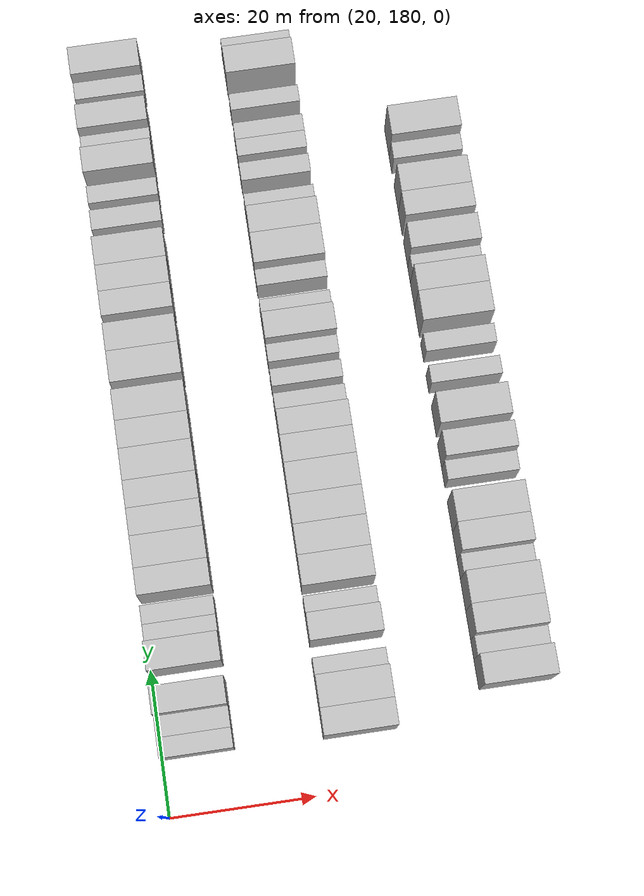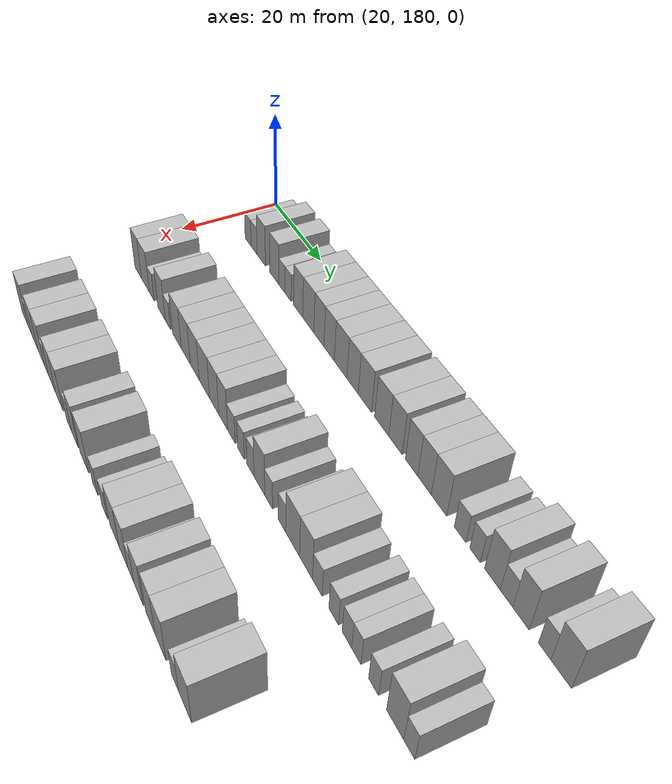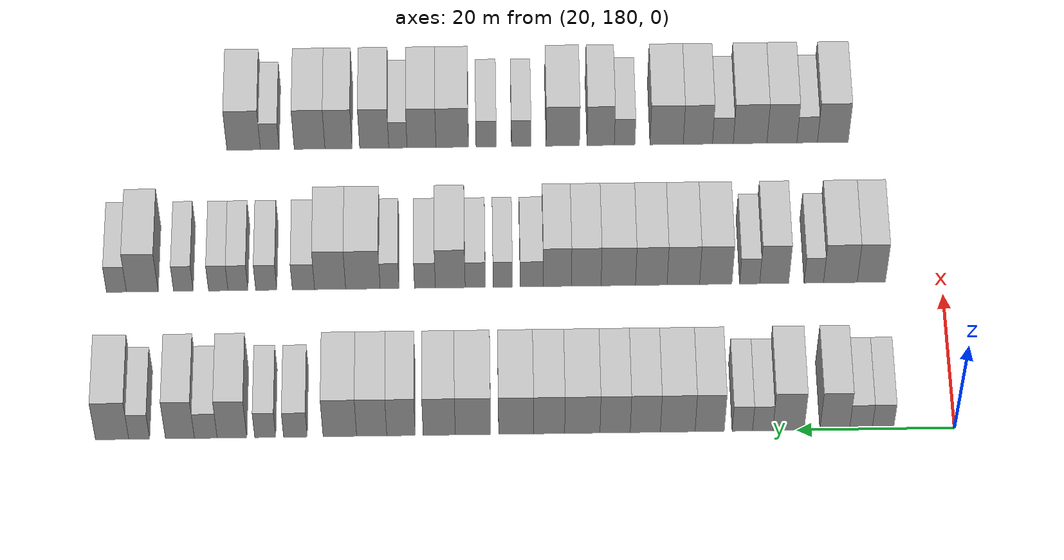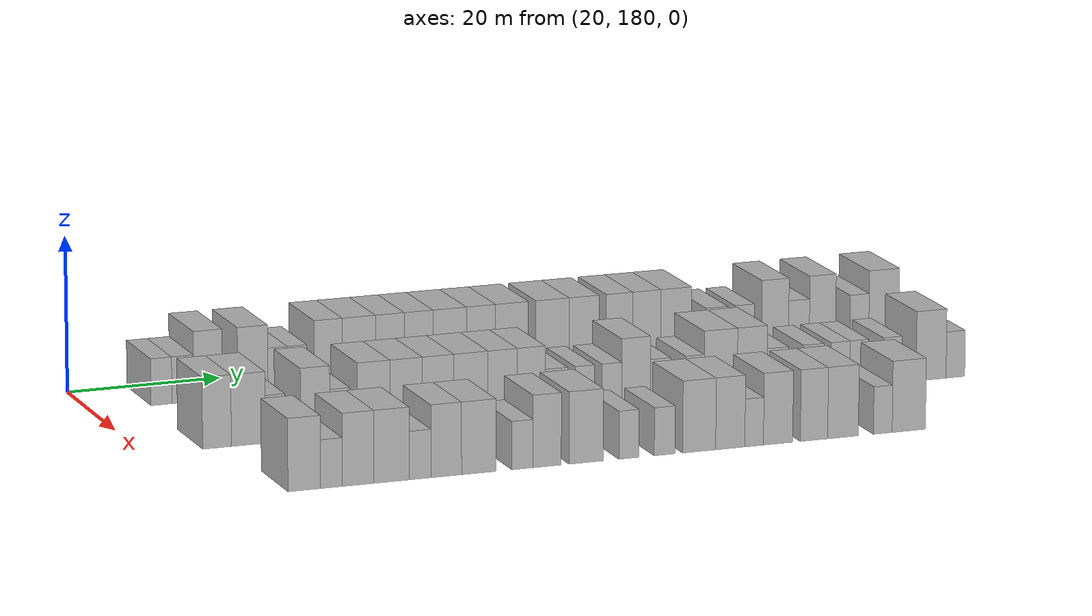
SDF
<sdf version="1.6">
 <world name="default">
  <model name="building_142">
   <static>1</static>
   <pose>25.0000 189.1186 0 0.000000 0.000000 0.000000</pose>
   <link name="link">
    <pose>0 0 3.00 0 0 0</pose>
    <collision name="collision"><geometry><box><size>10.0000 2.7301 6.0000</size></box></geometry></collision>
    <visual name="visual">
     <cast_shadows>0</cast_shadows>
     <geometry><box><size>10.0000 2.7301 6.0000</size></box></geometry>
     <material>
      <script>
       <uri>model://HANNAS_wall/materials/scripts</uri>
       <uri>model://HANNAS_wall/materials/textures</uri>
       <name>vrc/HANNAS_wall</name>
      </script>
     </material>
    </visual>
   </link>
  </model>
  <model name="building_143">
   <static>1</static>
   <pose>25.0000 191.9158 0 0.000000 0.000000 0.000000</pose>
   <link name="link">
    <pose>0 0 3.00 0 0 0</pose>
    <collision name="collision"><geometry><box><size>10.0000 2.8645 6.0000</size></box></geometry></collision>
    <visual name="visual">
     <cast_shadows>0</cast_shadows>
     <geometry><box><size>10.0000 2.8645 6.0000</size></box></geometry>
     <material>
      <script>
       <uri>model://HANNAS_wall/materials/scripts</uri>
       <uri>model://HANNAS_wall/materials/textures</uri>
       <name>vrc/HANNAS_wall</name>
      </script>
     </material>
    </visual>
   </link>
  </model>
  <model name="building_144">
   <static>1</static>
   <pose>25.0000 195.2219 0 0.000000 0.000000 0.000000</pose>
   <link name="link">
    <pose>0 0 4.50 0 0 0</pose>
    <collision name="collision"><geometry><box><size>10.0000 3.7477 9.0000</size></box></geometry></collision>
    <visual name="visual">
     <cast_shadows>0</cast_shadows>
     <geometry><box><size>10.0000 3.7477 9.0000</size></box></geometry>
     <material>
      <script>
       <uri>model://HANNAS_wall/materials/scripts</uri>
       <uri>model://HANNAS_wall/materials/textures</uri>
       <name>vrc/HANNAS_wall</name>
      </script>
     </material>
    </visual>
   </link>
  </model>
  <model name="building_145">
   <static>1</static>
   <pose>25.0000 201.0868 0 0.000000 0.000000 0.000000</pose>
   <link name="link">
    <pose>0 0 4.50 0 0 0</pose>
    <collision name="collision"><geometry><box><size>10.0000 3.9820 9.0000</size></box></geometry></collision>
    <visual name="visual">
     <cast_shadows>0</cast_shadows>
     <geometry><box><size>10.0000 3.9820 9.0000</size></box></geometry>
     <material>
      <script>
       <uri>model://HANNAS_wall/materials/scripts</uri>
       <uri>model://HANNAS_wall/materials/textures</uri>
       <name>vrc/HANNAS_wall</name>
      </script>
     </material>
    </visual>
   </link>
  </model>
  <model name="building_146">
   <static>1</static>
   <pose>25.0000 204.3620 0 0.000000 0.000000 0.000000</pose>
   <link name="link">
    <pose>0 0 3.00 0 0 0</pose>
    <collision name="collision"><geometry><box><size>10.0000 2.5684 6.0000</size></box></geometry></collision>
    <visual name="visual">
     <cast_shadows>0</cast_shadows>
     <geometry><box><size>10.0000 2.5684 6.0000</size></box></geometry>
     <material>
      <script>
       <uri>model://HANNAS_wall/materials/scripts</uri>
       <uri>model://HANNAS_wall/materials/textures</uri>
       <name>vrc/HANNAS_wall</name>
      </script>
     </material>
    </visual>
   </link>
  </model>
  <model name="building_147">
   <static>1</static>
   <pose>25.0000 206.9360 0 0.000000 0.000000 0.000000</pose>
   <link name="link">
    <pose>0 0 3.00 0 0 0</pose>
    <collision name="collision"><geometry><box><size>10.0000 2.5796 6.0000</size></box></geometry></collision>
    <visual name="visual">
     <cast_shadows>0</cast_shadows>
     <geometry><box><size>10.0000 2.5796 6.0000</size></box></geometry>
     <material>
      <script>
       <uri>model://HANNAS_wall/materials/scripts</uri>
       <uri>model://HANNAS_wall/materials/textures</uri>
       <name>vrc/HANNAS_wall</name>
      </script>
     </material>
    </visual>
   </link>
  </model>
  <model name="building_148">
   <static>1</static>
   <pose>25.0000 211.0804 0 0.000000 0.000000 0.000000</pose>
   <link name="link">
    <pose>0 0 4.50 0 0 0</pose>
    <collision name="collision"><geometry><box><size>10.0000 3.7092 9.0000</size></box></geometry></collision>
    <visual name="visual">
     <cast_shadows>0</cast_shadows>
     <geometry><box><size>10.0000 3.7092 9.0000</size></box></geometry>
     <material>
      <script>
       <uri>model://HANNAS_wall/materials/scripts</uri>
       <uri>model://HANNAS_wall/materials/textures</uri>
       <name>vrc/HANNAS_wall</name>
      </script>
     </material>
    </visual>
   </link>
  </model>
  <model name="building_149">
   <static>1</static>
   <pose>25.0000 215.1332 0 0.000000 0.000000 0.000000</pose>
   <link name="link">
    <pose>0 0 4.50 0 0 0</pose>
    <collision name="collision"><geometry><box><size>10.0000 4.3963 9.0000</size></box></geometry></collision>
    <visual name="visual">
     <cast_shadows>0</cast_shadows>
     <geometry><box><size>10.0000 4.3963 9.0000</size></box></geometry>
     <material>
      <script>
       <uri>model://HANNAS_wall/materials/scripts</uri>
       <uri>model://HANNAS_wall/materials/textures</uri>
       <name>vrc/HANNAS_wall</name>
      </script>
     </material>
    </visual>
   </link>
  </model>
  <model name="building_150">
   <static>1</static>
   <pose>25.0000 219.2403 0 0.000000 0.000000 0.000000</pose>
   <link name="link">
    <pose>0 0 4.50 0 0 0</pose>
    <collision name="collision"><geometry><box><size>10.0000 3.8178 9.0000</size></box></geometry></collision>
    <visual name="visual">
     <cast_shadows>0</cast_shadows>
     <geometry><box><size>10.0000 3.8178 9.0000</size></box></geometry>
     <material>
      <script>
       <uri>model://HANNAS_wall/materials/scripts</uri>
       <uri>model://HANNAS_wall/materials/textures</uri>
       <name>vrc/HANNAS_wall</name>
      </script>
     </material>
    </visual>
   </link>
  </model>
  <model name="building_151">
   <static>1</static>
   <pose>25.0000 223.0662 0 0.000000 0.000000 0.000000</pose>
   <link name="link">
    <pose>0 0 4.50 0 0 0</pose>
    <collision name="collision"><geometry><box><size>10.0000 3.8341 9.0000</size></box></geometry></collision>
    <visual name="visual">
     <cast_shadows>0</cast_shadows>
     <geometry><box><size>10.0000 3.8341 9.0000</size></box></geometry>
     <material>
      <script>
       <uri>model://HANNAS_wall/materials/scripts</uri>
       <uri>model://HANNAS_wall/materials/textures</uri>
       <name>vrc/HANNAS_wall</name>
      </script>
     </material>
    </visual>
   </link>
  </model>
  <model name="building_152">
   <static>1</static>
   <pose>25.0000 227.2191 0 0.000000 0.000000 0.000000</pose>
   <link name="link">
    <pose>0 0 4.50 0 0 0</pose>
    <collision name="collision"><geometry><box><size>10.0000 4.4717 9.0000</size></box></geometry></collision>
    <visual name="visual">
     <cast_shadows>0</cast_shadows>
     <geometry><box><size>10.0000 4.4717 9.0000</size></box></geometry>
     <material>
      <script>
       <uri>model://HANNAS_wall/materials/scripts</uri>
       <uri>model://HANNAS_wall/materials/textures</uri>
       <name>vrc/HANNAS_wall</name>
      </script>
     </material>
    </visual>
   </link>
  </model>
  <model name="building_153">
   <static>1</static>
   <pose>25.0000 231.4214 0 0.000000 0.000000 0.000000</pose>
   <link name="link">
    <pose>0 0 4.50 0 0 0</pose>
    <collision name="collision"><geometry><box><size>10.0000 3.9328 9.0000</size></box></geometry></collision>
    <visual name="visual">
     <cast_shadows>0</cast_shadows>
     <geometry><box><size>10.0000 3.9328 9.0000</size></box></geometry>
     <material>
      <script>
       <uri>model://HANNAS_wall/materials/scripts</uri>
       <uri>model://HANNAS_wall/materials/textures</uri>
       <name>vrc/HANNAS_wall</name>
      </script>
     </material>
    </visual>
   </link>
  </model>
  <model name="building_154">
   <static>1</static>
   <pose>25.0000 235.5982 0 0.000000 0.000000 0.000000</pose>
   <link name="link">
    <pose>0 0 4.50 0 0 0</pose>
    <collision name="collision"><geometry><box><size>10.0000 4.4208 9.0000</size></box></geometry></collision>
    <visual name="visual">
     <cast_shadows>0</cast_shadows>
     <geometry><box><size>10.0000 4.4208 9.0000</size></box></geometry>
     <material>
      <script>
       <uri>model://HANNAS_wall/materials/scripts</uri>
       <uri>model://HANNAS_wall/materials/textures</uri>
       <name>vrc/HANNAS_wall</name>
      </script>
     </material>
    </visual>
   </link>
  </model>
  <model name="building_155">
   <static>1</static>
   <pose>25.0000 241.0549 0 0.000000 0.000000 0.000000</pose>
   <link name="link">
    <pose>0 0 4.50 0 0 0</pose>
    <collision name="collision"><geometry><box><size>10.0000 4.4926 9.0000</size></box></geometry></collision>
    <visual name="visual">
     <cast_shadows>0</cast_shadows>
     <geometry><box><size>10.0000 4.4926 9.0000</size></box></geometry>
     <material>
      <script>
       <uri>model://HANNAS_wall/materials/scripts</uri>
       <uri>model://HANNAS_wall/materials/textures</uri>
       <name>vrc/HANNAS_wall</name>
      </script>
     </material>
    </visual>
   </link>
  </model>
  <model name="building_156">
   <static>1</static>
   <pose>25.0000 245.3344 0 0.000000 0.000000 0.000000</pose>
   <link name="link">
    <pose>0 0 4.50 0 0 0</pose>
    <collision name="collision"><geometry><box><size>10.0000 4.0664 9.0000</size></box></geometry></collision>
    <visual name="visual">
     <cast_shadows>0</cast_shadows>
     <geometry><box><size>10.0000 4.0664 9.0000</size></box></geometry>
     <material>
      <script>
       <uri>model://HANNAS_wall/materials/scripts</uri>
       <uri>model://HANNAS_wall/materials/textures</uri>
       <name>vrc/HANNAS_wall</name>
      </script>
     </material>
    </visual>
   </link>
  </model>
  <model name="building_157">
   <static>1</static>
   <pose>25.0000 250.1731 0 0.000000 0.000000 0.000000</pose>
   <link name="link">
    <pose>0 0 4.50 0 0 0</pose>
    <collision name="collision"><geometry><box><size>10.0000 3.6110 9.0000</size></box></geometry></collision>
    <visual name="visual">
     <cast_shadows>0</cast_shadows>
     <geometry><box><size>10.0000 3.6110 9.0000</size></box></geometry>
     <material>
      <script>
       <uri>model://HANNAS_wall/materials/scripts</uri>
       <uri>model://HANNAS_wall/materials/textures</uri>
       <name>vrc/HANNAS_wall</name>
      </script>
     </material>
    </visual>
   </link>
  </model>
  <model name="building_158">
   <static>1</static>
   <pose>25.0000 253.8845 0 0.000000 0.000000 0.000000</pose>
   <link name="link">
    <pose>0 0 4.50 0 0 0</pose>
    <collision name="collision"><geometry><box><size>10.0000 3.8118 9.0000</size></box></geometry></collision>
    <visual name="visual">
     <cast_shadows>0</cast_shadows>
     <geometry><box><size>10.0000 3.8118 9.0000</size></box></geometry>
     <material>
      <script>
       <uri>model://HANNAS_wall/materials/scripts</uri>
       <uri>model://HANNAS_wall/materials/textures</uri>
       <name>vrc/HANNAS_wall</name>
      </script>
     </material>
    </visual>
   </link>
  </model>
  <model name="building_159">
   <static>1</static>
   <pose>25.0000 257.9127 0 0.000000 0.000000 0.000000</pose>
   <link name="link">
    <pose>0 0 4.50 0 0 0</pose>
    <collision name="collision"><geometry><box><size>10.0000 4.2445 9.0000</size></box></geometry></collision>
    <visual name="visual">
     <cast_shadows>0</cast_shadows>
     <geometry><box><size>10.0000 4.2445 9.0000</size></box></geometry>
     <material>
      <script>
       <uri>model://HANNAS_wall/materials/scripts</uri>
       <uri>model://HANNAS_wall/materials/textures</uri>
       <name>vrc/HANNAS_wall</name>
      </script>
     </material>
    </visual>
   </link>
  </model>
  <model name="building_160">
   <static>1</static>
   <pose>25.0000 263.5318 0 0.000000 0.000000 0.000000</pose>
   <link name="link">
    <pose>0 0 3.00 0 0 0</pose>
    <collision name="collision"><geometry><box><size>10.0000 2.9937 6.0000</size></box></geometry></collision>
    <visual name="visual">
     <cast_shadows>0</cast_shadows>
     <geometry><box><size>10.0000 2.9937 6.0000</size></box></geometry>
     <material>
      <script>
       <uri>model://HANNAS_wall/materials/scripts</uri>
       <uri>model://HANNAS_wall/materials/textures</uri>
       <name>vrc/HANNAS_wall</name>
      </script>
     </material>
    </visual>
   </link>
  </model>
  <model name="building_161">
   <static>1</static>
   <pose>25.0000 267.3562 0 0.000000 0.000000 0.000000</pose>
   <link name="link">
    <pose>0 0 3.00 0 0 0</pose>
    <collision name="collision"><geometry><box><size>10.0000 2.6552 6.0000</size></box></geometry></collision>
    <visual name="visual">
     <cast_shadows>0</cast_shadows>
     <geometry><box><size>10.0000 2.6552 6.0000</size></box></geometry>
     <material>
      <script>
       <uri>model://HANNAS_wall/materials/scripts</uri>
       <uri>model://HANNAS_wall/materials/textures</uri>
       <name>vrc/HANNAS_wall</name>
      </script>
     </material>
    </visual>
   </link>
  </model>
  <model name="building_162">
   <static>1</static>
   <pose>25.0000 271.5610 0 0.000000 0.000000 0.000000</pose>
   <link name="link">
    <pose>0 0 4.50 0 0 0</pose>
    <collision name="collision"><geometry><box><size>10.0000 3.7544 9.0000</size></box></geometry></collision>
    <visual name="visual">
     <cast_shadows>0</cast_shadows>
     <geometry><box><size>10.0000 3.7544 9.0000</size></box></geometry>
     <material>
      <script>
       <uri>model://HANNAS_wall/materials/scripts</uri>
       <uri>model://HANNAS_wall/materials/textures</uri>
       <name>vrc/HANNAS_wall</name>
      </script>
     </material>
    </visual>
   </link>
  </model>
  <model name="building_163">
   <static>1</static>
   <pose>25.0000 274.8769 0 0.000000 0.000000 0.000000</pose>
   <link name="link">
    <pose>0 0 3.00 0 0 0</pose>
    <collision name="collision"><geometry><box><size>10.0000 2.8773 6.0000</size></box></geometry></collision>
    <visual name="visual">
     <cast_shadows>0</cast_shadows>
     <geometry><box><size>10.0000 2.8773 6.0000</size></box></geometry>
     <material>
      <script>
       <uri>model://HANNAS_wall/materials/scripts</uri>
       <uri>model://HANNAS_wall/materials/textures</uri>
       <name>vrc/HANNAS_wall</name>
      </script>
     </material>
    </visual>
   </link>
  </model>
  <model name="building_164">
   <static>1</static>
   <pose>25.0000 278.1471 0 0.000000 0.000000 0.000000</pose>
   <link name="link">
    <pose>0 0 4.50 0 0 0</pose>
    <collision name="collision"><geometry><box><size>10.0000 3.6632 9.0000</size></box></geometry></collision>
    <visual name="visual">
     <cast_shadows>0</cast_shadows>
     <geometry><box><size>10.0000 3.6632 9.0000</size></box></geometry>
     <material>
      <script>
       <uri>model://HANNAS_wall/materials/scripts</uri>
       <uri>model://HANNAS_wall/materials/textures</uri>
       <name>vrc/HANNAS_wall</name>
      </script>
     </material>
    </visual>
   </link>
  </model>
  <model name="building_165">
   <static>1</static>
   <pose>25.0000 283.2971 0 0.000000 0.000000 0.000000</pose>
   <link name="link">
    <pose>0 0 3.00 0 0 0</pose>
    <collision name="collision"><geometry><box><size>10.0000 2.6367 6.0000</size></box></geometry></collision>
    <visual name="visual">
     <cast_shadows>0</cast_shadows>
     <geometry><box><size>10.0000 2.6367 6.0000</size></box></geometry>
     <material>
      <script>
       <uri>model://HANNAS_wall/materials/scripts</uri>
       <uri>model://HANNAS_wall/materials/textures</uri>
       <name>vrc/HANNAS_wall</name>
      </script>
     </material>
    </visual>
   </link>
  </model>
  <model name="building_166">
   <static>1</static>
   <pose>25.0000 286.7233 0 0.000000 0.000000 0.000000</pose>
   <link name="link">
    <pose>0 0 4.50 0 0 0</pose>
    <collision name="collision"><geometry><box><size>10.0000 4.2158 9.0000</size></box></geometry></collision>
    <visual name="visual">
     <cast_shadows>0</cast_shadows>
     <geometry><box><size>10.0000 4.2158 9.0000</size></box></geometry>
     <material>
      <script>
       <uri>model://HANNAS_wall/materials/scripts</uri>
       <uri>model://HANNAS_wall/materials/textures</uri>
       <name>vrc/HANNAS_wall</name>
      </script>
     </material>
    </visual>
   </link>
  </model>
  <model name="building_318">
   <static>1</static>
   <pose>47.0000 189.1848 0 0.000000 0.000000 0.000000</pose>
   <link name="link">
    <pose>0 0 4.50 0 0 0</pose>
    <collision name="collision"><geometry><box><size>10.0000 3.6716 9.0000</size></box></geometry></collision>
    <visual name="visual">
     <cast_shadows>0</cast_shadows>
     <geometry><box><size>10.0000 3.6716 9.0000</size></box></geometry>
     <material>
      <script>
       <uri>model://HANNAS_wall/materials/scripts</uri>
       <uri>model://HANNAS_wall/materials/textures</uri>
       <name>vrc/HANNAS_wall</name>
      </script>
     </material>
    </visual>
   </link>
  </model>
  <model name="building_319">
   <static>1</static>
   <pose>47.0000 193.2069 0 0.000000 0.000000 0.000000</pose>
   <link name="link">
    <pose>0 0 4.50 0 0 0</pose>
    <collision name="collision"><geometry><box><size>10.0000 4.3726 9.0000</size></box></geometry></collision>
    <visual name="visual">
     <cast_shadows>0</cast_shadows>
     <geometry><box><size>10.0000 4.3726 9.0000</size></box></geometry>
     <material>
      <script>
       <uri>model://HANNAS_wall/materials/scripts</uri>
       <uri>model://HANNAS_wall/materials/textures</uri>
       <name>vrc/HANNAS_wall</name>
      </script>
     </material>
    </visual>
   </link>
  </model>
  <model name="building_320">
   <static>1</static>
   <pose>47.0000 196.6490 0 0.000000 0.000000 0.000000</pose>
   <link name="link">
    <pose>0 0 3.00 0 0 0</pose>
    <collision name="collision"><geometry><box><size>10.0000 2.5116 6.0000</size></box></geometry></collision>
    <visual name="visual">
     <cast_shadows>0</cast_shadows>
     <geometry><box><size>10.0000 2.5116 6.0000</size></box></geometry>
     <material>
      <script>
       <uri>model://HANNAS_wall/materials/scripts</uri>
       <uri>model://HANNAS_wall/materials/textures</uri>
       <name>vrc/HANNAS_wall</name>
      </script>
     </material>
    </visual>
   </link>
  </model>
  <model name="building_321">
   <static>1</static>
   <pose>47.0000 201.7935 0 0.000000 0.000000 0.000000</pose>
   <link name="link">
    <pose>0 0 4.50 0 0 0</pose>
    <collision name="collision"><geometry><box><size>10.0000 3.7774 9.0000</size></box></geometry></collision>
    <visual name="visual">
     <cast_shadows>0</cast_shadows>
     <geometry><box><size>10.0000 3.7774 9.0000</size></box></geometry>
     <material>
      <script>
       <uri>model://HANNAS_wall/materials/scripts</uri>
       <uri>model://HANNAS_wall/materials/textures</uri>
       <name>vrc/HANNAS_wall</name>
      </script>
     </material>
    </visual>
   </link>
  </model>
  <model name="building_322">
   <static>1</static>
   <pose>47.0000 204.9820 0 0.000000 0.000000 0.000000</pose>
   <link name="link">
    <pose>0 0 3.00 0 0 0</pose>
    <collision name="collision"><geometry><box><size>10.0000 2.5997 6.0000</size></box></geometry></collision>
    <visual name="visual">
     <cast_shadows>0</cast_shadows>
     <geometry><box><size>10.0000 2.5997 6.0000</size></box></geometry>
     <material>
      <script>
       <uri>model://HANNAS_wall/materials/scripts</uri>
       <uri>model://HANNAS_wall/materials/textures</uri>
       <name>vrc/HANNAS_wall</name>
      </script>
     </material>
    </visual>
   </link>
  </model>
  <model name="building_323">
   <static>1</static>
   <pose>47.0000 209.3836 0 0.000000 0.000000 0.000000</pose>
   <link name="link">
    <pose>0 0 4.50 0 0 0</pose>
    <collision name="collision"><geometry><box><size>10.0000 4.2036 9.0000</size></box></geometry></collision>
    <visual name="visual">
     <cast_shadows>0</cast_shadows>
     <geometry><box><size>10.0000 4.2036 9.0000</size></box></geometry>
     <material>
      <script>
       <uri>model://HANNAS_wall/materials/scripts</uri>
       <uri>model://HANNAS_wall/materials/textures</uri>
       <name>vrc/HANNAS_wall</name>
      </script>
     </material>
    </visual>
   </link>
  </model>
  <model name="building_324">
   <static>1</static>
   <pose>47.0000 213.5947 0 0.000000 0.000000 0.000000</pose>
   <link name="link">
    <pose>0 0 4.50 0 0 0</pose>
    <collision name="collision"><geometry><box><size>10.0000 4.2184 9.0000</size></box></geometry></collision>
    <visual name="visual">
     <cast_shadows>0</cast_shadows>
     <geometry><box><size>10.0000 4.2184 9.0000</size></box></geometry>
     <material>
      <script>
       <uri>model://HANNAS_wall/materials/scripts</uri>
       <uri>model://HANNAS_wall/materials/textures</uri>
       <name>vrc/HANNAS_wall</name>
      </script>
     </material>
    </visual>
   </link>
  </model>
  <model name="building_325">
   <static>1</static>
   <pose>47.0000 217.7546 0 0.000000 0.000000 0.000000</pose>
   <link name="link">
    <pose>0 0 4.50 0 0 0</pose>
    <collision name="collision"><geometry><box><size>10.0000 4.1013 9.0000</size></box></geometry></collision>
    <visual name="visual">
     <cast_shadows>0</cast_shadows>
     <geometry><box><size>10.0000 4.1013 9.0000</size></box></geometry>
     <material>
      <script>
       <uri>model://HANNAS_wall/materials/scripts</uri>
       <uri>model://HANNAS_wall/materials/textures</uri>
       <name>vrc/HANNAS_wall</name>
      </script>
     </material>
    </visual>
   </link>
  </model>
  <model name="building_326">
   <static>1</static>
   <pose>47.0000 222.0404 0 0.000000 0.000000 0.000000</pose>
   <link name="link">
    <pose>0 0 4.50 0 0 0</pose>
    <collision name="collision"><geometry><box><size>10.0000 4.4704 9.0000</size></box></geometry></collision>
    <visual name="visual">
     <cast_shadows>0</cast_shadows>
     <geometry><box><size>10.0000 4.4704 9.0000</size></box></geometry>
     <material>
      <script>
       <uri>model://HANNAS_wall/materials/scripts</uri>
       <uri>model://HANNAS_wall/materials/textures</uri>
       <name>vrc/HANNAS_wall</name>
      </script>
     </material>
    </visual>
   </link>
  </model>
  <model name="building_327">
   <static>1</static>
   <pose>47.0000 226.2069 0 0.000000 0.000000 0.000000</pose>
   <link name="link">
    <pose>0 0 4.50 0 0 0</pose>
    <collision name="collision"><geometry><box><size>10.0000 3.8625 9.0000</size></box></geometry></collision>
    <visual name="visual">
     <cast_shadows>0</cast_shadows>
     <geometry><box><size>10.0000 3.8625 9.0000</size></box></geometry>
     <material>
      <script>
       <uri>model://HANNAS_wall/materials/scripts</uri>
       <uri>model://HANNAS_wall/materials/textures</uri>
       <name>vrc/HANNAS_wall</name>
      </script>
     </material>
    </visual>
   </link>
  </model>
  <model name="building_328">
   <static>1</static>
   <pose>47.0000 229.9576 0 0.000000 0.000000 0.000000</pose>
   <link name="link">
    <pose>0 0 4.50 0 0 0</pose>
    <collision name="collision"><geometry><box><size>10.0000 3.6390 9.0000</size></box></geometry></collision>
    <visual name="visual">
     <cast_shadows>0</cast_shadows>
     <geometry><box><size>10.0000 3.6390 9.0000</size></box></geometry>
     <material>
      <script>
       <uri>model://HANNAS_wall/materials/scripts</uri>
       <uri>model://HANNAS_wall/materials/textures</uri>
       <name>vrc/HANNAS_wall</name>
      </script>
     </material>
    </visual>
   </link>
  </model>
  <model name="building_329">
   <static>1</static>
   <pose>47.0000 233.2657 0 0.000000 0.000000 0.000000</pose>
   <link name="link">
    <pose>0 0 3.00 0 0 0</pose>
    <collision name="collision"><geometry><box><size>10.0000 2.9771 6.0000</size></box></geometry></collision>
    <visual name="visual">
     <cast_shadows>0</cast_shadows>
     <geometry><box><size>10.0000 2.9771 6.0000</size></box></geometry>
     <material>
      <script>
       <uri>model://HANNAS_wall/materials/scripts</uri>
       <uri>model://HANNAS_wall/materials/textures</uri>
       <name>vrc/HANNAS_wall</name>
      </script>
     </material>
    </visual>
   </link>
  </model>
  <model name="building_330">
   <static>1</static>
   <pose>47.0000 237.0100 0 0.000000 0.000000 0.000000</pose>
   <link name="link">
    <pose>0 0 3.00 0 0 0</pose>
    <collision name="collision"><geometry><box><size>10.0000 2.5115 6.0000</size></box></geometry></collision>
    <visual name="visual">
     <cast_shadows>0</cast_shadows>
     <geometry><box><size>10.0000 2.5115 6.0000</size></box></geometry>
     <material>
      <script>
       <uri>model://HANNAS_wall/materials/scripts</uri>
       <uri>model://HANNAS_wall/materials/textures</uri>
       <name>vrc/HANNAS_wall</name>
      </script>
     </material>
    </visual>
   </link>
  </model>
  <model name="building_331">
   <static>1</static>
   <pose>47.0000 240.5778 0 0.000000 0.000000 0.000000</pose>
   <link name="link">
    <pose>0 0 3.00 0 0 0</pose>
    <collision name="collision"><geometry><box><size>10.0000 2.6241 6.0000</size></box></geometry></collision>
    <visual name="visual">
     <cast_shadows>0</cast_shadows>
     <geometry><box><size>10.0000 2.6241 6.0000</size></box></geometry>
     <material>
      <script>
       <uri>model://HANNAS_wall/materials/scripts</uri>
       <uri>model://HANNAS_wall/materials/textures</uri>
       <name>vrc/HANNAS_wall</name>
      </script>
     </material>
    </visual>
   </link>
  </model>
  <model name="building_332">
   <static>1</static>
   <pose>47.0000 243.8211 0 0.000000 0.000000 0.000000</pose>
   <link name="link">
    <pose>0 0 4.50 0 0 0</pose>
    <collision name="collision"><geometry><box><size>10.0000 3.8624 9.0000</size></box></geometry></collision>
    <visual name="visual">
     <cast_shadows>0</cast_shadows>
     <geometry><box><size>10.0000 3.8624 9.0000</size></box></geometry>
     <material>
      <script>
       <uri>model://HANNAS_wall/materials/scripts</uri>
       <uri>model://HANNAS_wall/materials/textures</uri>
       <name>vrc/HANNAS_wall</name>
      </script>
     </material>
    </visual>
   </link>
  </model>
  <model name="building_333">
   <static>1</static>
   <pose>47.0000 247.1028 0 0.000000 0.000000 0.000000</pose>
   <link name="link">
    <pose>0 0 3.00 0 0 0</pose>
    <collision name="collision"><geometry><box><size>10.0000 2.7012 6.0000</size></box></geometry></collision>
    <visual name="visual">
     <cast_shadows>0</cast_shadows>
     <geometry><box><size>10.0000 2.7012 6.0000</size></box></geometry>
     <material>
      <script>
       <uri>model://HANNAS_wall/materials/scripts</uri>
       <uri>model://HANNAS_wall/materials/textures</uri>
       <name>vrc/HANNAS_wall</name>
      </script>
     </material>
    </visual>
   </link>
  </model>
  <model name="building_334">
   <static>1</static>
   <pose>47.0000 251.6819 0 0.000000 0.000000 0.000000</pose>
   <link name="link">
    <pose>0 0 3.00 0 0 0</pose>
    <collision name="collision"><geometry><box><size>10.0000 2.4569 6.0000</size></box></geometry></collision>
    <visual name="visual">
     <cast_shadows>0</cast_shadows>
     <geometry><box><size>10.0000 2.4569 6.0000</size></box></geometry>
     <material>
      <script>
       <uri>model://HANNAS_wall/materials/scripts</uri>
       <uri>model://HANNAS_wall/materials/textures</uri>
       <name>vrc/HANNAS_wall</name>
      </script>
     </material>
    </visual>
   </link>
  </model>
  <model name="building_335">
   <static>1</static>
   <pose>47.0000 255.1486 0 0.000000 0.000000 0.000000</pose>
   <link name="link">
    <pose>0 0 4.50 0 0 0</pose>
    <collision name="collision"><geometry><box><size>10.0000 4.4767 9.0000</size></box></geometry></collision>
    <visual name="visual">
     <cast_shadows>0</cast_shadows>
     <geometry><box><size>10.0000 4.4767 9.0000</size></box></geometry>
     <material>
      <script>
       <uri>model://HANNAS_wall/materials/scripts</uri>
       <uri>model://HANNAS_wall/materials/textures</uri>
       <name>vrc/HANNAS_wall</name>
      </script>
     </material>
    </visual>
   </link>
  </model>
  <model name="building_336">
   <static>1</static>
   <pose>47.0000 259.4004 0 0.000000 0.000000 0.000000</pose>
   <link name="link">
    <pose>0 0 4.50 0 0 0</pose>
    <collision name="collision"><geometry><box><size>10.0000 4.0268 9.0000</size></box></geometry></collision>
    <visual name="visual">
     <cast_shadows>0</cast_shadows>
     <geometry><box><size>10.0000 4.0268 9.0000</size></box></geometry>
     <material>
      <script>
       <uri>model://HANNAS_wall/materials/scripts</uri>
       <uri>model://HANNAS_wall/materials/textures</uri>
       <name>vrc/HANNAS_wall</name>
      </script>
     </material>
    </visual>
   </link>
  </model>
  <model name="building_337">
   <static>1</static>
   <pose>47.0000 262.8544 0 0.000000 0.000000 0.000000</pose>
   <link name="link">
    <pose>0 0 3.00 0 0 0</pose>
    <collision name="collision"><geometry><box><size>10.0000 2.8813 6.0000</size></box></geometry></collision>
    <visual name="visual">
     <cast_shadows>0</cast_shadows>
     <geometry><box><size>10.0000 2.8813 6.0000</size></box></geometry>
     <material>
      <script>
       <uri>model://HANNAS_wall/materials/scripts</uri>
       <uri>model://HANNAS_wall/materials/textures</uri>
       <name>vrc/HANNAS_wall</name>
      </script>
     </material>
    </visual>
   </link>
  </model>
  <model name="building_338">
   <static>1</static>
   <pose>47.0000 267.6644 0 0.000000 0.000000 0.000000</pose>
   <link name="link">
    <pose>0 0 3.00 0 0 0</pose>
    <collision name="collision"><geometry><box><size>10.0000 2.7385 6.0000</size></box></geometry></collision>
    <visual name="visual">
     <cast_shadows>0</cast_shadows>
     <geometry><box><size>10.0000 2.7385 6.0000</size></box></geometry>
     <material>
      <script>
       <uri>model://HANNAS_wall/materials/scripts</uri>
       <uri>model://HANNAS_wall/materials/textures</uri>
       <name>vrc/HANNAS_wall</name>
      </script>
     </material>
    </visual>
   </link>
  </model>
  <model name="building_339">
   <static>1</static>
   <pose>47.0000 271.3292 0 0.000000 0.000000 0.000000</pose>
   <link name="link">
    <pose>0 0 3.00 0 0 0</pose>
    <collision name="collision"><geometry><box><size>10.0000 2.5911 6.0000</size></box></geometry></collision>
    <visual name="visual">
     <cast_shadows>0</cast_shadows>
     <geometry><box><size>10.0000 2.5911 6.0000</size></box></geometry>
     <material>
      <script>
       <uri>model://HANNAS_wall/materials/scripts</uri>
       <uri>model://HANNAS_wall/materials/textures</uri>
       <name>vrc/HANNAS_wall</name>
      </script>
     </material>
    </visual>
   </link>
  </model>
  <model name="building_340">
   <static>1</static>
   <pose>47.0000 273.8832 0 0.000000 0.000000 0.000000</pose>
   <link name="link">
    <pose>0 0 3.00 0 0 0</pose>
    <collision name="collision"><geometry><box><size>10.0000 2.5169 6.0000</size></box></geometry></collision>
    <visual name="visual">
     <cast_shadows>0</cast_shadows>
     <geometry><box><size>10.0000 2.5169 6.0000</size></box></geometry>
     <material>
      <script>
       <uri>model://HANNAS_wall/materials/scripts</uri>
       <uri>model://HANNAS_wall/materials/textures</uri>
       <name>vrc/HANNAS_wall</name>
      </script>
     </material>
    </visual>
   </link>
  </model>
  <model name="building_341">
   <static>1</static>
   <pose>47.0000 278.4048 0 0.000000 0.000000 0.000000</pose>
   <link name="link">
    <pose>0 0 3.00 0 0 0</pose>
    <collision name="collision"><geometry><box><size>10.0000 2.5263 6.0000</size></box></geometry></collision>
    <visual name="visual">
     <cast_shadows>0</cast_shadows>
     <geometry><box><size>10.0000 2.5263 6.0000</size></box></geometry>
     <material>
      <script>
       <uri>model://HANNAS_wall/materials/scripts</uri>
       <uri>model://HANNAS_wall/materials/textures</uri>
       <name>vrc/HANNAS_wall</name>
      </script>
     </material>
    </visual>
   </link>
  </model>
  <model name="building_342">
   <static>1</static>
   <pose>47.0000 283.7239 0 0.000000 0.000000 0.000000</pose>
   <link name="link">
    <pose>0 0 4.50 0 0 0</pose>
    <collision name="collision"><geometry><box><size>10.0000 4.1119 9.0000</size></box></geometry></collision>
    <visual name="visual">
     <cast_shadows>0</cast_shadows>
     <geometry><box><size>10.0000 4.1119 9.0000</size></box></geometry>
     <material>
      <script>
       <uri>model://HANNAS_wall/materials/scripts</uri>
       <uri>model://HANNAS_wall/materials/textures</uri>
       <name>vrc/HANNAS_wall</name>
      </script>
     </material>
    </visual>
   </link>
  </model>
  <model name="building_343">
   <static>1</static>
   <pose>47.0000 287.0652 0 0.000000 0.000000 0.000000</pose>
   <link name="link">
    <pose>0 0 3.00 0 0 0</pose>
    <collision name="collision"><geometry><box><size>10.0000 2.5706 6.0000</size></box></geometry></collision>
    <visual name="visual">
     <cast_shadows>0</cast_shadows>
     <geometry><box><size>10.0000 2.5706 6.0000</size></box></geometry>
     <material>
      <script>
       <uri>model://HANNAS_wall/materials/scripts</uri>
       <uri>model://HANNAS_wall/materials/textures</uri>
       <name>vrc/HANNAS_wall</name>
      </script>
     </material>
    </visual>
   </link>
  </model>
  <model name="building_507">
   <static>1</static>
   <pose>69.0000 192.9018 0 0.000000 0.000000 0.000000</pose>
   <link name="link">
    <pose>0 0 4.50 0 0 0</pose>
    <collision name="collision"><geometry><box><size>10.0000 4.0913 9.0000</size></box></geometry></collision>
    <visual name="visual">
     <cast_shadows>0</cast_shadows>
     <geometry><box><size>10.0000 4.0913 9.0000</size></box></geometry>
     <material>
      <script>
       <uri>model://HANNAS_wall/materials/scripts</uri>
       <uri>model://HANNAS_wall/materials/textures</uri>
       <name>vrc/HANNAS_wall</name>
      </script>
     </material>
    </visual>
   </link>
  </model>
  <model name="building_508">
   <static>1</static>
   <pose>69.0000 196.3153 0 0.000000 0.000000 0.000000</pose>
   <link name="link">
    <pose>0 0 3.00 0 0 0</pose>
    <collision name="collision"><geometry><box><size>10.0000 2.7357 6.0000</size></box></geometry></collision>
    <visual name="visual">
     <cast_shadows>0</cast_shadows>
     <geometry><box><size>10.0000 2.7357 6.0000</size></box></geometry>
     <material>
      <script>
       <uri>model://HANNAS_wall/materials/scripts</uri>
       <uri>model://HANNAS_wall/materials/textures</uri>
       <name>vrc/HANNAS_wall</name>
      </script>
     </material>
    </visual>
   </link>
  </model>
  <model name="building_509">
   <static>1</static>
   <pose>69.0000 199.6721 0 0.000000 0.000000 0.000000</pose>
   <link name="link">
    <pose>0 0 4.50 0 0 0</pose>
    <collision name="collision"><geometry><box><size>10.0000 3.9781 9.0000</size></box></geometry></collision>
    <visual name="visual">
     <cast_shadows>0</cast_shadows>
     <geometry><box><size>10.0000 3.9781 9.0000</size></box></geometry>
     <material>
      <script>
       <uri>model://HANNAS_wall/materials/scripts</uri>
       <uri>model://HANNAS_wall/materials/textures</uri>
       <name>vrc/HANNAS_wall</name>
      </script>
     </material>
    </visual>
   </link>
  </model>
  <model name="building_510">
   <static>1</static>
   <pose>69.0000 203.9013 0 0.000000 0.000000 0.000000</pose>
   <link name="link">
    <pose>0 0 4.50 0 0 0</pose>
    <collision name="collision"><geometry><box><size>10.0000 4.4802 9.0000</size></box></geometry></collision>
    <visual name="visual">
     <cast_shadows>0</cast_shadows>
     <geometry><box><size>10.0000 4.4802 9.0000</size></box></geometry>
     <material>
      <script>
       <uri>model://HANNAS_wall/materials/scripts</uri>
       <uri>model://HANNAS_wall/materials/textures</uri>
       <name>vrc/HANNAS_wall</name>
      </script>
     </material>
    </visual>
   </link>
  </model>
  <model name="building_511">
   <static>1</static>
   <pose>69.0000 207.5194 0 0.000000 0.000000 0.000000</pose>
   <link name="link">
    <pose>0 0 3.00 0 0 0</pose>
    <collision name="collision"><geometry><box><size>10.0000 2.7560 6.0000</size></box></geometry></collision>
    <visual name="visual">
     <cast_shadows>0</cast_shadows>
     <geometry><box><size>10.0000 2.7560 6.0000</size></box></geometry>
     <material>
      <script>
       <uri>model://HANNAS_wall/materials/scripts</uri>
       <uri>model://HANNAS_wall/materials/textures</uri>
       <name>vrc/HANNAS_wall</name>
      </script>
     </material>
    </visual>
   </link>
  </model>
  <model name="building_512">
   <static>1</static>
   <pose>69.0000 210.8394 0 0.000000 0.000000 0.000000</pose>
   <link name="link">
    <pose>0 0 4.50 0 0 0</pose>
    <collision name="collision"><geometry><box><size>10.0000 3.8840 9.0000</size></box></geometry></collision>
    <visual name="visual">
     <cast_shadows>0</cast_shadows>
     <geometry><box><size>10.0000 3.8840 9.0000</size></box></geometry>
     <material>
      <script>
       <uri>model://HANNAS_wall/materials/scripts</uri>
       <uri>model://HANNAS_wall/materials/textures</uri>
       <name>vrc/HANNAS_wall</name>
      </script>
     </material>
    </visual>
   </link>
  </model>
  <model name="building_513">
   <static>1</static>
   <pose>69.0000 214.9906 0 0.000000 0.000000 0.000000</pose>
   <link name="link">
    <pose>0 0 4.50 0 0 0</pose>
    <collision name="collision"><geometry><box><size>10.0000 4.4184 9.0000</size></box></geometry></collision>
    <visual name="visual">
     <cast_shadows>0</cast_shadows>
     <geometry><box><size>10.0000 4.4184 9.0000</size></box></geometry>
     <material>
      <script>
       <uri>model://HANNAS_wall/materials/scripts</uri>
       <uri>model://HANNAS_wall/materials/textures</uri>
       <name>vrc/HANNAS_wall</name>
      </script>
     </material>
    </visual>
   </link>
  </model>
  <model name="building_514">
   <static>1</static>
   <pose>69.0000 220.5708 0 0.000000 0.000000 0.000000</pose>
   <link name="link">
    <pose>0 0 3.00 0 0 0</pose>
    <collision name="collision"><geometry><box><size>10.0000 2.7420 6.0000</size></box></geometry></collision>
    <visual name="visual">
     <cast_shadows>0</cast_shadows>
     <geometry><box><size>10.0000 2.7420 6.0000</size></box></geometry>
     <material>
      <script>
       <uri>model://HANNAS_wall/materials/scripts</uri>
       <uri>model://HANNAS_wall/materials/textures</uri>
       <name>vrc/HANNAS_wall</name>
      </script>
     </material>
    </visual>
   </link>
  </model>
  <model name="building_515">
   <static>1</static>
   <pose>69.0000 223.7511 0 0.000000 0.000000 0.000000</pose>
   <link name="link">
    <pose>0 0 4.50 0 0 0</pose>
    <collision name="collision"><geometry><box><size>10.0000 3.6185 9.0000</size></box></geometry></collision>
    <visual name="visual">
     <cast_shadows>0</cast_shadows>
     <geometry><box><size>10.0000 3.6185 9.0000</size></box></geometry>
     <material>
      <script>
       <uri>model://HANNAS_wall/materials/scripts</uri>
       <uri>model://HANNAS_wall/materials/textures</uri>
       <name>vrc/HANNAS_wall</name>
      </script>
     </material>
    </visual>
   </link>
  </model>
  <model name="building_516">
   <static>1</static>
   <pose>69.0000 228.7767 0 0.000000 0.000000 0.000000</pose>
   <link name="link">
    <pose>0 0 4.50 0 0 0</pose>
    <collision name="collision"><geometry><box><size>10.0000 4.4327 9.0000</size></box></geometry></collision>
    <visual name="visual">
     <cast_shadows>0</cast_shadows>
     <geometry><box><size>10.0000 4.4327 9.0000</size></box></geometry>
     <material>
      <script>
       <uri>model://HANNAS_wall/materials/scripts</uri>
       <uri>model://HANNAS_wall/materials/textures</uri>
       <name>vrc/HANNAS_wall</name>
      </script>
     </material>
    </visual>
   </link>
  </model>
  <model name="building_517">
   <static>1</static>
   <pose>69.0000 234.2900 0 0.000000 0.000000 0.000000</pose>
   <link name="link">
    <pose>0 0 3.00 0 0 0</pose>
    <collision name="collision"><geometry><box><size>10.0000 2.5940 6.0000</size></box></geometry></collision>
    <visual name="visual">
     <cast_shadows>0</cast_shadows>
     <geometry><box><size>10.0000 2.5940 6.0000</size></box></geometry>
     <material>
      <script>
       <uri>model://HANNAS_wall/materials/scripts</uri>
       <uri>model://HANNAS_wall/materials/textures</uri>
       <name>vrc/HANNAS_wall</name>
      </script>
     </material>
    </visual>
   </link>
  </model>
  <model name="building_518">
   <static>1</static>
   <pose>69.0000 238.9385 0 0.000000 0.000000 0.000000</pose>
   <link name="link">
    <pose>0 0 3.00 0 0 0</pose>
    <collision name="collision"><geometry><box><size>10.0000 2.7029 6.0000</size></box></geometry></collision>
    <visual name="visual">
     <cast_shadows>0</cast_shadows>
     <geometry><box><size>10.0000 2.7029 6.0000</size></box></geometry>
     <material>
      <script>
       <uri>model://HANNAS_wall/materials/scripts</uri>
       <uri>model://HANNAS_wall/materials/textures</uri>
       <name>vrc/HANNAS_wall</name>
      </script>
     </material>
    </visual>
   </link>
  </model>
  <model name="building_519">
   <static>1</static>
   <pose>69.0000 243.4465 0 0.000000 0.000000 0.000000</pose>
   <link name="link">
    <pose>0 0 4.50 0 0 0</pose>
    <collision name="collision"><geometry><box><size>10.0000 4.3131 9.0000</size></box></geometry></collision>
    <visual name="visual">
     <cast_shadows>0</cast_shadows>
     <geometry><box><size>10.0000 4.3131 9.0000</size></box></geometry>
     <material>
      <script>
       <uri>model://HANNAS_wall/materials/scripts</uri>
       <uri>model://HANNAS_wall/materials/textures</uri>
       <name>vrc/HANNAS_wall</name>
      </script>
     </material>
    </visual>
   </link>
  </model>
  <model name="building_520">
   <static>1</static>
   <pose>69.0000 247.5204 0 0.000000 0.000000 0.000000</pose>
   <link name="link">
    <pose>0 0 4.50 0 0 0</pose>
    <collision name="collision"><geometry><box><size>10.0000 3.8347 9.0000</size></box></geometry></collision>
    <visual name="visual">
     <cast_shadows>0</cast_shadows>
     <geometry><box><size>10.0000 3.8347 9.0000</size></box></geometry>
     <material>
      <script>
       <uri>model://HANNAS_wall/materials/scripts</uri>
       <uri>model://HANNAS_wall/materials/textures</uri>
       <name>vrc/HANNAS_wall</name>
      </script>
     </material>
    </visual>
   </link>
  </model>
  <model name="building_521">
   <static>1</static>
   <pose>69.0000 250.6535 0 0.000000 0.000000 0.000000</pose>
   <link name="link">
    <pose>0 0 3.00 0 0 0</pose>
    <collision name="collision"><geometry><box><size>10.0000 2.4315 6.0000</size></box></geometry></collision>
    <visual name="visual">
     <cast_shadows>0</cast_shadows>
     <geometry><box><size>10.0000 2.4315 6.0000</size></box></geometry>
     <material>
      <script>
       <uri>model://HANNAS_wall/materials/scripts</uri>
       <uri>model://HANNAS_wall/materials/textures</uri>
       <name>vrc/HANNAS_wall</name>
      </script>
     </material>
    </visual>
   </link>
  </model>
  <model name="building_522">
   <static>1</static>
   <pose>69.0000 253.7957 0 0.000000 0.000000 0.000000</pose>
   <link name="link">
    <pose>0 0 4.50 0 0 0</pose>
    <collision name="collision"><geometry><box><size>10.0000 3.8530 9.0000</size></box></geometry></collision>
    <visual name="visual">
     <cast_shadows>0</cast_shadows>
     <geometry><box><size>10.0000 3.8530 9.0000</size></box></geometry>
     <material>
      <script>
       <uri>model://HANNAS_wall/materials/scripts</uri>
       <uri>model://HANNAS_wall/materials/textures</uri>
       <name>vrc/HANNAS_wall</name>
      </script>
     </material>
    </visual>
   </link>
  </model>
  <model name="building_523">
   <static>1</static>
   <pose>69.0000 258.5251 0 0.000000 0.000000 0.000000</pose>
   <link name="link">
    <pose>0 0 4.50 0 0 0</pose>
    <collision name="collision"><geometry><box><size>10.0000 3.6058 9.0000</size></box></geometry></collision>
    <visual name="visual">
     <cast_shadows>0</cast_shadows>
     <geometry><box><size>10.0000 3.6058 9.0000</size></box></geometry>
     <material>
      <script>
       <uri>model://HANNAS_wall/materials/scripts</uri>
       <uri>model://HANNAS_wall/materials/textures</uri>
       <name>vrc/HANNAS_wall</name>
      </script>
     </material>
    </visual>
   </link>
  </model>
  <model name="building_524">
   <static>1</static>
   <pose>69.0000 262.3646 0 0.000000 0.000000 0.000000</pose>
   <link name="link">
    <pose>0 0 4.50 0 0 0</pose>
    <collision name="collision"><geometry><box><size>10.0000 4.0732 9.0000</size></box></geometry></collision>
    <visual name="visual">
     <cast_shadows>0</cast_shadows>
     <geometry><box><size>10.0000 4.0732 9.0000</size></box></geometry>
     <material>
      <script>
       <uri>model://HANNAS_wall/materials/scripts</uri>
       <uri>model://HANNAS_wall/materials/textures</uri>
       <name>vrc/HANNAS_wall</name>
      </script>
     </material>
    </visual>
   </link>
  </model>
  <model name="building_525">
   <static>1</static>
   <pose>69.0000 267.6458 0 0.000000 0.000000 0.000000</pose>
   <link name="link">
    <pose>0 0 3.00 0 0 0</pose>
    <collision name="collision"><geometry><box><size>10.0000 2.4893 6.0000</size></box></geometry></collision>
    <visual name="visual">
     <cast_shadows>0</cast_shadows>
     <geometry><box><size>10.0000 2.4893 6.0000</size></box></geometry>
     <material>
      <script>
       <uri>model://HANNAS_wall/materials/scripts</uri>
       <uri>model://HANNAS_wall/materials/textures</uri>
       <name>vrc/HANNAS_wall</name>
      </script>
     </material>
    </visual>
   </link>
  </model>
  <model name="building_526">
   <static>1</static>
   <pose>69.0000 271.1112 0 0.000000 0.000000 0.000000</pose>
   <link name="link">
    <pose>0 0 4.50 0 0 0</pose>
    <collision name="collision"><geometry><box><size>10.0000 4.4416 9.0000</size></box></geometry></collision>
    <visual name="visual">
     <cast_shadows>0</cast_shadows>
     <geometry><box><size>10.0000 4.4416 9.0000</size></box></geometry>
     <material>
      <script>
       <uri>model://HANNAS_wall/materials/scripts</uri>
       <uri>model://HANNAS_wall/materials/textures</uri>
       <name>vrc/HANNAS_wall</name>
      </script>
     </material>
    </visual>
   </link>
  </model>
 </world>
</sdf>
